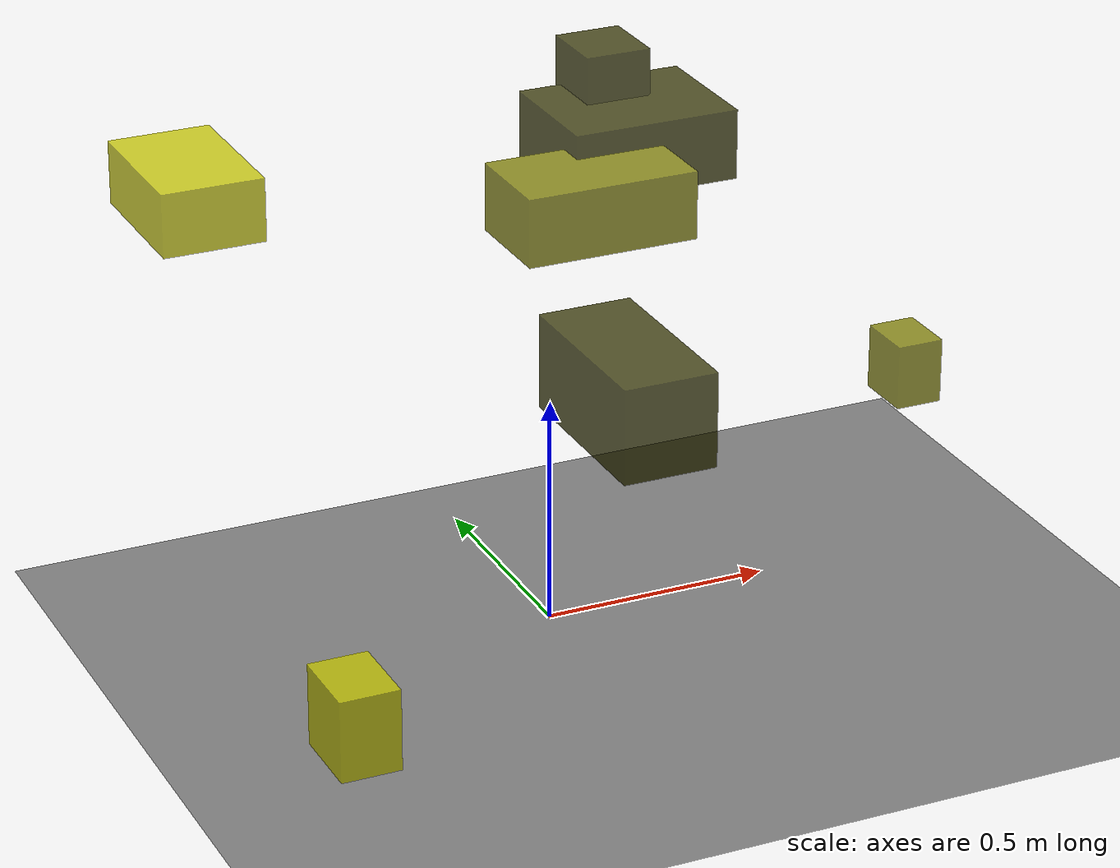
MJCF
<?xml version="1.0"?>
<mujoco model="obstacle_scene">
  <compiler angle="radian" coordinate="local"/>
  <option timestep="0.001" gravity="0 0 -9.81"/>

  <asset>
    <material name="obstacle_mat" rgba="0.8 0.8 0.0 0.8"/>
    <material name="ground_mat" rgba="0.5 0.5 0.5 1"/>
  </asset>

  <worldbody>
    <!-- Ground plane -->
    <geom name="ground" type="plane" size="3 3 0.1" material="ground_mat"/>

    <!-- Obstacles -->
    <body name="obstacle_0" pos="0.284919 0.356576 1.040290">
      <geom name="obs_0" type="box" size="0.072296 0.078634 0.087400" rgba="0.2 0.2 0.0 0.8"/>
    </body>
    <body name="obstacle_1" pos="0.126121 0.075034 0.899128">
      <geom name="obs_1" type="box" size="0.188010 0.111658 0.074392" rgba="0.5 0.5 0.0 0.8"/>
    </body>
    <body name="obstacle_2" pos="-0.650156 0.351513 0.949971">
      <geom name="obs_2" type="box" size="0.109726 0.162012 0.068451" rgba="0.8 0.8 0.0 0.8"/>
    </body>
    <body name="obstacle_3" pos="0.301281 0.267741 0.948041">
      <geom name="obs_3" type="box" size="0.184117 0.144648 0.076636" rgba="0.2 0.2 0.0 0.8"/>
    </body>
    <body name="obstacle_4" pos="0.959641 0.207392 0.322097">
      <geom name="obs_4" type="box" size="0.053038 0.067648 0.073698" rgba="0.5 0.5 0.0 0.8"/>
    </body>
    <body name="obstacle_5" pos="-0.746446 -0.760648 0.324580">
      <geom name="obs_5" type="box" size="0.060950 0.081373 0.084820" rgba="0.8 0.8 0.0 0.8"/>
    </body>
    <body name="obstacle_6" pos="0.018084 -0.326615 0.662514">
      <geom name="obs_6" type="box" size="0.100580 0.199802 0.101682" rgba="0.2 0.2 0.0 0.8"/>
    </body>
  </worldbody>
</mujoco>
